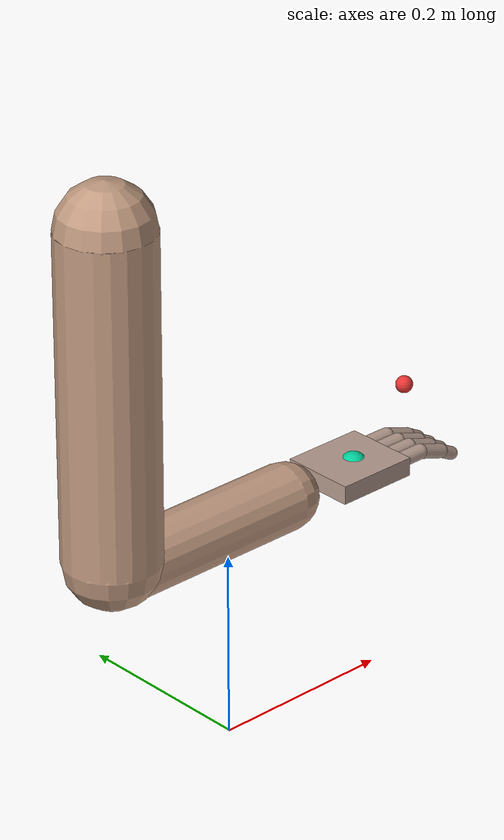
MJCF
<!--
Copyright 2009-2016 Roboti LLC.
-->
<mujoco model="arm_hand (v1.31)">
	<compiler 	inertiafromgeom="true"
				angle="radian"/>

	<size 	nuser_jnt="1"
			nuser_geom="1"/>

	<option	timestep="0.01"
			gravity="0 0 -9.8"
			viscosity="0"
			iterations="20"/>

	<asset>
		<material name="MatGnd" specular=".3" shininess=".3" reflectance="0.3" rgba=".5 .55 .5 1"/>
	</asset>

	<default>
		<joint limited="true" damping="1" stiffness="0" armature=".1" user="0"/>
		<geom solref="0.008 1" solimp="0.95 0.95 0.01" margin="0.001" user="0"/>
		<motor ctrllimited="true" ctrlrange="-1 1"/>
		<position ctrllimited="false"/> #true

		<default class='0'>
			<geom friction="1 0.005 0.001" rgba=".75 .6 .5 1" contype="1" conaffinity="0"/>
		</default>

		<default class='1'>
			<geom friction="1 0.005 0.001" rgba=".7 .6 .55 1" contype="1" conaffinity="0"/>
		</default>

		<default class='arm'>
			<joint damping="5"/> #5
		</default>
	</default>

	<worldbody>
		<light directional="true" cutoff="40" exponent="10" diffuse=".4 .4 .4" specular=".7 .7 .7" pos="0 0 1.5" dir="0 0 -1"/>

		<!--  ================= ARM ================= /-->
		<body name="upperarm" pos="-0.15 0 0.6">
			<geom class="0" type="capsule" fromto="0 0 0 0 0 -0.345" size="0.05" mass="3.956"/><!--Total: 7.212  ratio: 0.54853-->
			<joint class='arm' name="s_abduction" type="hinge" pos="0 0 0" axis="1 0 0" range="-1.57 .7" user="001"/>
			<joint class='arm' name="s_flexion" type="hinge" pos="0 0 0" axis="0 -1 0" range="-.85 1.57" user="002"/>
			<joint class='arm' name="s_rotation" type="hinge" pos="0 0 0" axis="0 0 1" range="-.85 .85" user="003"/>

			<body name="forearm" pos="0 0 -0.36">
				<geom class="0" type="capsule" fromto="0 0 0 0.225 0 0" size="0.035" mass="2.366" /><!--Total:   ratio: 0.32806-->
				<joint class='arm' name="e_flexion" type="hinge" pos="0 0 0" axis="0 -1 0" range="-1.5 1.05" user="004"/>
				<joint class='arm' name="e_pronation" type="hinge" pos="0 0 0" axis="-1 0 0" range="-1.5 1.57" user="005"/>

	<!--  ================= Palm ================= /-->
				<body name="palm" pos="0.27 0 0">
					<geom class="1" name="palm" type="box" size="0.045 0.04 0.01" pos="0.045 0 0" mass="0.89"/><!--Total:   ratio: 0.12341-->
					<joint name="w_abduction" type="hinge" pos="0 0 0" axis="0 0 1" range="-.5 .5" user="006"/>
					<joint name="w_flexion" type="hinge" pos="0 0 0" axis="0 -1 0" range="-1.05 1.05" user="007"/>

					<body name="finger" pos=".09 0 0">
						<geom name="FFP" class="1" type="capsule" fromto=".00  .024 0 		.03   .024 0" 		size="0.008" />
						<geom name="FFM" class="1" type="capsule" fromto=".03  .024 0 		.06   .024 -.01" 	size="0.0075" />
						<geom name="FFD" class="1" type="capsule" fromto=".06  .024 -.01 	.075  .024 -.018" 	size="0.007" />

						<geom name="MFP" class="1" type="capsule" fromto=".00 -.008 0 		.03  -.008 0" 		size="0.008"/>
						<geom name="MFM" class="1" type="capsule" fromto=".03 -.008 0 		.06  -.008 -.01" 	size="0.0075" />
						<geom name="MFD" class="1" type="capsule" fromto=".06 -.008 -.01 	.075 -.008 -.018" 	size="0.007" />

						<geom name="RFP" class="1" type="capsule" fromto=".00  .008 0 		.03   .008 0" 		size="0.008" />
						<geom name="RFM" class="1" type="capsule" fromto=".03  .008 0 		.06   .008 -.01" 	size="0.0075" />
						<geom name="RFD" class="1" type="capsule" fromto=".06  .008 -.01 	.075  .008 -.018" 	size="0.007" />

						<geom name="LFP" class="1" type="capsule" fromto=".00 -.024 0 		.03  -.024 0" 		size="0.008" />
						<geom name="LFM" class="1" type="capsule" fromto=".03 -.024 0 		.06  -.024 -.01" 	size="0.0075" />
						<geom name="LFD" class="1" type="capsule" fromto=".06 -.024 -.01 	.075 -.024 -.018" 	size="0.007" />
						<body name="fingertip" pos="-0.02 0 0">
							<geom contype="0" name="fingertip" pos="-0.02 0 0" rgba="0.0 0.8 0.6 1" size=".015" type="sphere" />
                        </body>
					</body>
				</body>
			</body>
		</body>

			<!-- Target -->

			<body name="target" pos=".15 0.01 -.1">
				<site  name="target" pos="0.1 0 0.4" rgba="0.9 0.2 0.2 1" size=".009 .009 .009" type="sphere" />
			</body>

  		</worldbody>

	<actuator>
		<motor ctrllimited="true" ctrlrange="-1 1" gear="25.0" joint='s_abduction'/>##check this
		<motor ctrllimited="true" ctrlrange="-1 1" gear="25.0" joint='s_flexion' />##check this
		<motor ctrllimited="true" ctrlrange="-1 1" gear="25.0" joint='s_rotation'/>#
		<motor ctrllimited="true" ctrlrange="-1 1" gear="25.0" joint='e_flexion' />##check this
		<motor ctrllimited="true" ctrlrange="-1 1" gear="25.0" joint='e_pronation'/>##check this
		<motor ctrllimited="true" ctrlrange="-1 1" gear="25.0" joint='w_abduction'/>#
		<motor ctrllimited="true" ctrlrange="-1 1" gear="25.0" joint='w_flexion'/>##check this
	</actuator>
</mujoco>
